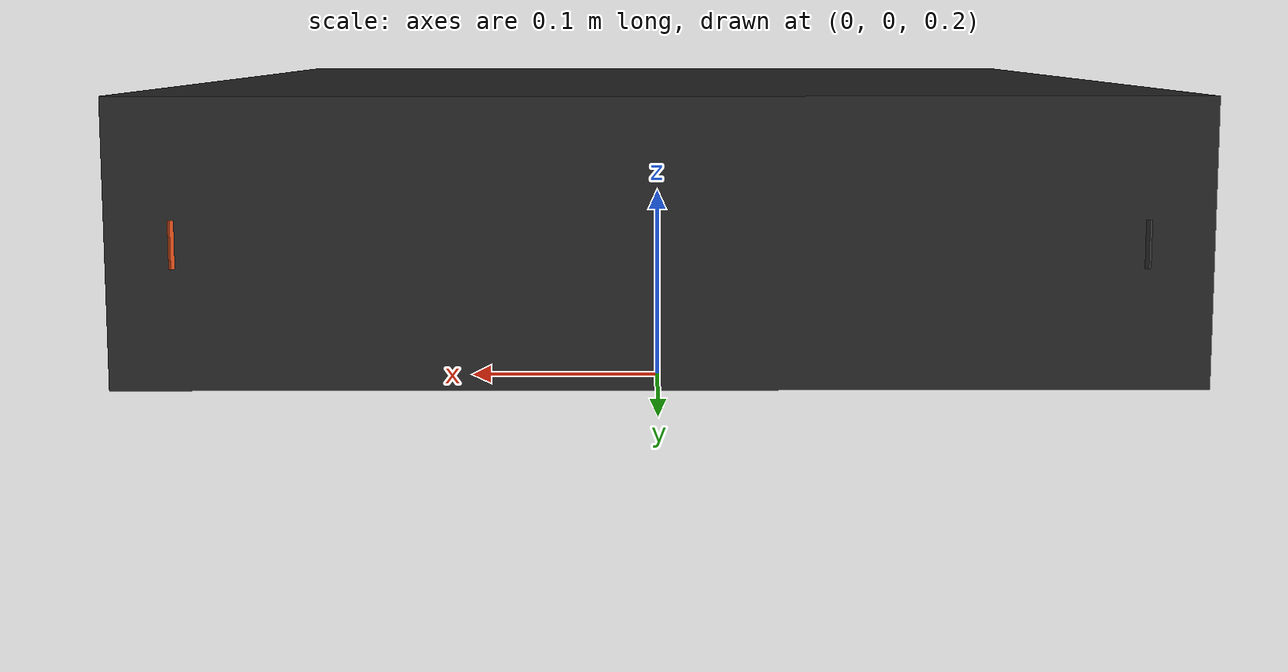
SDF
<?xml version="1.0" ?>
<!-- SIH26177 Search-and-Rescue Quadrotor UAV Model for Ignition Gazebo Fortress -->
<sdf version="1.8">
  <model name="sih_uav">
    <pose>0 0 0.3 0 0 0</pose>
    <static>false</static>

    <!-- Main Airframe Base Link -->
    <link name="base_link">
      <inertial>
        <mass>1.5</mass>
        <inertia>
          <ixx>0.028125</ixx>
          <ixy>0</ixy>
          <ixz>0</ixz>
          <iyy>0.028125</iyy>
          <iyz>0</iyz>
          <izz>0.050625</izz>
        </inertia>
      </inertial>

      <collision name="base_collision">
        <geometry>
          <box>
            <size>0.45 0.45 0.15</size>
          </box>
        </geometry>
      </collision>

      <visual name="base_visual">
        <geometry>
          <box>
            <size>0.45 0.45 0.12</size>
          </box>
        </geometry>
        <material>
          <ambient>0.15 0.15 0.15 1</ambient>
          <diffuse>0.15 0.15 0.15 1</diffuse>
        </material>
      </visual>

      <visual name="arm_cross_1">
        <pose>0 0 0 0 0 0.785398</pose>
        <geometry>
          <box>
            <size>0.60 0.04 0.02</size>
          </box>
        </geometry>
        <material>
          <ambient>0.85 0.3 0.1 1</ambient> <!-- SAR High-Visibility Orange Accent -->
          <diffuse>0.85 0.3 0.1 1</diffuse>
        </material>
      </visual>

      <visual name="arm_cross_2">
        <pose>0 0 0 0 0 -0.785398</pose>
        <geometry>
          <box>
            <size>0.60 0.04 0.02</size>
          </box>
        </geometry>
        <material>
          <ambient>0.2 0.2 0.2 1</ambient>
          <diffuse>0.2 0.2 0.2 1</diffuse>
        </material>
      </visual>

      <!-- 1. 3D LiDAR Sensor Mounted on UAV Top Deck -->
      <sensor name="lidar_3d" type="gpu_lidar">
        <pose>0 0 0.10 0 0 0</pose>
        <topic>lidar</topic>
        <update_rate>10</update_rate>
        <ray>
          <scan>
            <horizontal>
              <samples>512</samples>
              <resolution>1</resolution>
              <min_angle>-3.14159265</min_angle>
              <max_angle>3.14159265</max_angle>
            </horizontal>
            <vertical>
              <samples>16</samples>
              <resolution>1</resolution>
              <min_angle>-0.261799</min_angle>  <!-- -15 deg -->
              <max_angle>0.261799</max_angle>   <!-- +15 deg -->
            </vertical>
          </scan>
          <range>
            <min>0.2</min>
            <max>50.0</max>
            <resolution>0.02</resolution>
          </range>
          <noise>
            <type>gaussian</type>
            <mean>0.0</mean>
            <stddev>0.01</stddev>
          </noise>
        </ray>
        <always_on>1</always_on>
        <visualize>false</visualize>
      </sensor>

      <!-- 2. Forward/Downward Gimbaled RGB Camera -->
      <sensor name="rgb_camera" type="camera">
        <pose>0.15 0 0.0 0 0.35 0</pose> <!-- 20 deg pitch down for SAR inspection -->
        <topic>/camera/image</topic>
        <camera>
          <horizontal_fov>1.085595</horizontal_fov> <!-- ~62.2 deg FOV -->
          <image>
            <width>640</width>
            <height>480</height>
            <format>R8G8B8</format>
          </image>
          <clip>
            <near>0.1</near>
            <far>100.0</far>
          </clip>
        </camera>
        <always_on>1</always_on>
        <update_rate>30</update_rate>
        <visualize>false</visualize>
      </sensor>

      <!-- 3. 6-Axis IMU Sensor -->
      <sensor name="drone_imu" type="imu">
        <always_on>1</always_on>
        <update_rate>100</update_rate>
        <pose>0 0 0 0 0 0</pose>
        <topic>/drone/imu/data</topic>
        <imu>
          <angular_velocity>
            <x><noise type="gaussian"><mean>0</mean><stddev>0.002</stddev></noise></x>
            <y><noise type="gaussian"><mean>0</mean><stddev>0.002</stddev></noise></y>
            <z><noise type="gaussian"><mean>0</mean><stddev>0.002</stddev></noise></z>
          </angular_velocity>
          <linear_acceleration>
            <x><noise type="gaussian"><mean>0</mean><stddev>0.015</stddev></noise></x>
            <y><noise type="gaussian"><mean>0</mean><stddev>0.015</stddev></noise></y>
            <z><noise type="gaussian"><mean>0</mean><stddev>0.015</stddev></noise></z>
          </linear_acceleration>
        </imu>
      </sensor>

      <!-- 4. GPS / GNSS Sensor -->
      <sensor name="drone_gps" type="navsat">
        <always_on>1</always_on>
        <update_rate>5</update_rate>
        <pose>0 0 0.08 0 0 0</pose>
        <topic>/drone/gps/fix</topic>
      </sensor>
    </link>

    <!-- 5. Velocity Control Plugin for Direct Twist Movement -->
    <plugin
      filename="ignition-gazebo-velocity-control-system"
      name="ignition::gazebo::systems::VelocityControl">
      <topic>/model/sih_uav/cmd_vel</topic>
    </plugin>

    <!-- 6. Odometry Publisher Plugin (Publishes odometry with pose and twist) -->
    <plugin
      filename="ignition-gazebo-odometry-publisher-system"
      name="ignition::gazebo::systems::OdometryPublisher">
      <odom_topic>/model/sih_uav/odometry</odom_topic>
      <odom_frame>world</odom_frame>
      <robot_base_frame>base_link</robot_base_frame>
      <dimensions>3</dimensions>
    </plugin>

    <!-- 7. Model Pose Publisher Plugin -->
    <plugin
      filename="ignition-gazebo-pose-publisher-system"
      name="ignition::gazebo::systems::PosePublisher">
      <publish_link_pose>false</publish_link_pose>
      <publish_nested_model_pose>true</publish_nested_model_pose>
      <use_pose_vector_msg>false</use_pose_vector_msg>
      <update_frequency>50</update_frequency>
    </plugin>

  </model>
</sdf>
